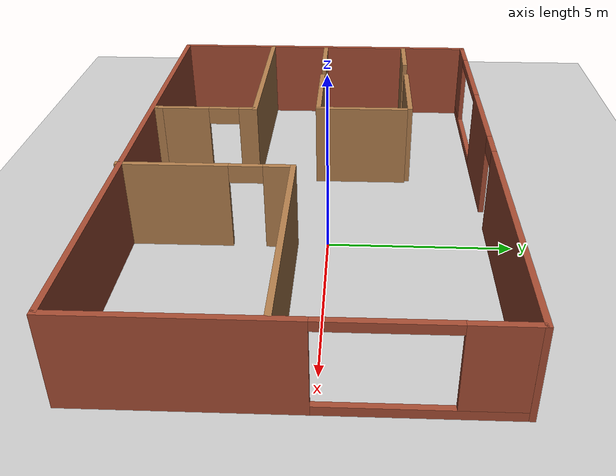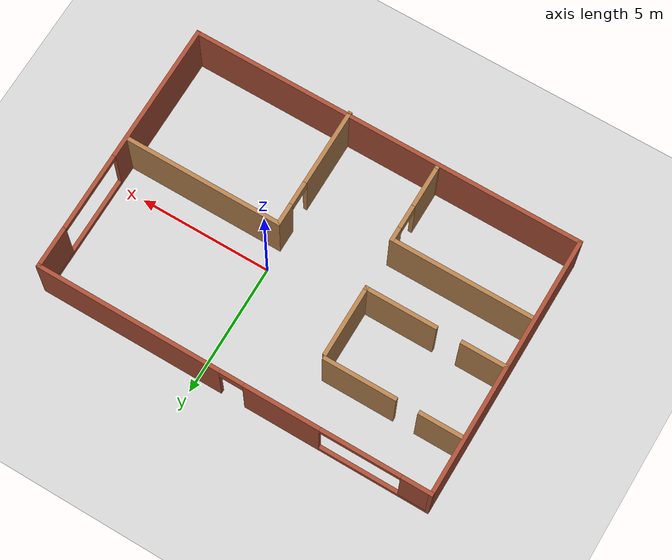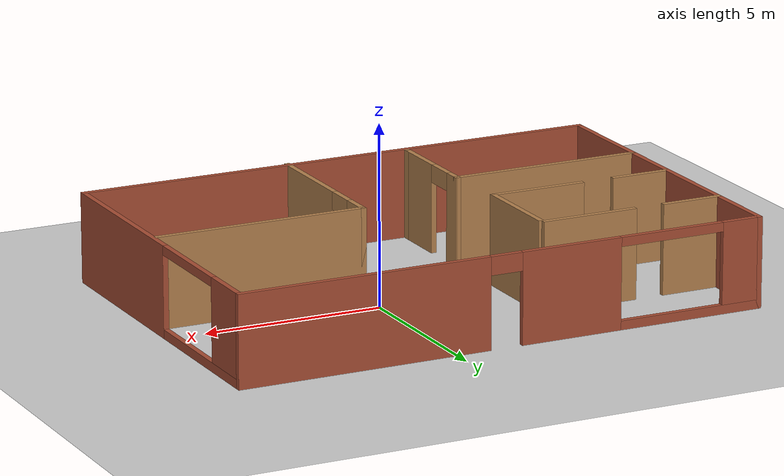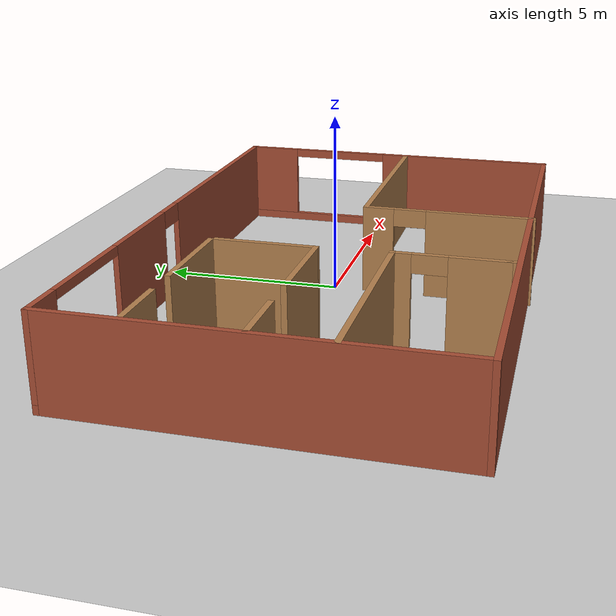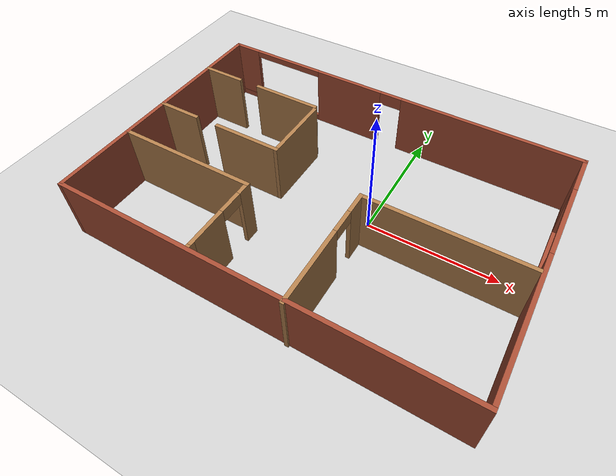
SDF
<sdf version="1.6">
 <world name="default">
  <light name="sun" type="directional">
   <pose>0 0 10 0 -0 0</pose>
   <diffuse>0.8 0.8 0.8 1</diffuse>
   <specular>0.2 0.2 0.2 1</specular>
   <attenuation>
    <range>1000</range>
    <constant>0.9</constant>
    <linear>0.01</linear>
    <quadratic>0.001</quadratic>
   </attenuation>
   <direction>-0.5 0.1 -0.9</direction>
  </light>
  <model name="ground_plane">
   <static>1</static>
   <link name="link">
    <collision name="collision">
     <geometry><plane><normal>0 0 1</normal><size>100 100</size></plane></geometry>
     <surface><friction><ode><mu>100</mu><mu2>50</mu2></ode></friction></surface>
    </collision>
    <visual name="visual">
     <cast_shadows>0</cast_shadows>
     <geometry><plane><normal>0 0 1</normal><size>100 100</size></plane></geometry>
     <material>
      <script><uri>file://media/materials/scripts/gazebo.material</uri><name>Gazebo/Grey</name></script>
     </material>
    </visual>
   </link>
  </model>
  <gravity>0 0 -9.8</gravity>
  <magnetic_field>6e-06 2.3e-05 -4.2e-05</magnetic_field>
  <atmosphere type="adiabatic"/>
  <physics name="default_physics" default="0" type="ode">
   <max_step_size>0.001</max_step_size>
   <real_time_factor>1</real_time_factor>
   <real_time_update_rate>1000</real_time_update_rate>
  </physics>
  <scene><ambient>0.4 0.4 0.4 1</ambient><background>0.7 0.7 0.7 1</background><shadows>1</shadows></scene>
  <spherical_coordinates>
   <surface_model>EARTH_WGS84</surface_model>
   <latitude_deg>0</latitude_deg>
   <longitude_deg>0</longitude_deg>
   <elevation>0</elevation>
   <heading_deg>0</heading_deg>
  </spherical_coordinates>
  <model name="building">
   <pose>-1.39777 -0.533095 0 0 -0 0</pose>
   <link name="Wall_0">
    <pose>7.42489 0.032568 0 0 -0 1.5708</pose>
    <visual name="Wall_0_Visual_0">
     <pose>-2.30676 0 1.25 0 -0 0</pose>
     <geometry><box><size>5.38649 0.15 2.5</size></box></geometry>
     <material>
      <script><uri>file://media/materials/scripts/gazebo.material</uri><name>Gazebo/Bricks</name></script>
      <ambient>0.760784 0.662745 0.627451 1</ambient>
     </material>
     <meta><layer>0</layer></meta>
    </visual>
    <collision name="Wall_0_Collision_0">
     <geometry><box><size>5.38649 0.15 2.5</size></box></geometry>
     <pose>-2.30676 0 1.25 0 -0 0</pose>
    </collision>
    <visual name="Wall_0_Visual_1">
     <pose>2.69324 0 0.125 0 -0 0</pose>
     <geometry><box><size>4.61351 0.15 0.25</size></box></geometry>
     <material>
      <script><uri>file://media/materials/scripts/gazebo.material</uri><name>Gazebo/Bricks</name></script>
      <ambient>0.760784 0.662745 0.627451 1</ambient>
     </material>
     <meta><layer>0</layer></meta>
    </visual>
    <collision name="Wall_0_Collision_1">
     <geometry><box><size>4.61351 0.15 0.25</size></box></geometry>
     <pose>2.69324 0 0.125 0 -0 0</pose>
    </collision>
    <visual name="Wall_0_Visual_2">
     <pose>4.19324 0 1.375 0 -0 0</pose>
     <geometry><box><size>1.61351 0.15 2.25</size></box></geometry>
     <material>
      <script><uri>file://media/materials/scripts/gazebo.material</uri><name>Gazebo/Bricks</name></script>
      <ambient>0.760784 0.662745 0.627451 1</ambient>
     </material>
     <meta><layer>0</layer></meta>
    </visual>
    <collision name="Wall_0_Collision_2">
     <geometry><box><size>1.61351 0.15 2.25</size></box></geometry>
     <pose>4.19324 0 1.375 0 -0 0</pose>
    </collision>
    <visual name="Wall_0_Visual_3">
     <pose>1.88649 0 2.375 0 -0 0</pose>
     <geometry><box><size>3 0.15 0.25</size></box></geometry>
     <material>
      <script><uri>file://media/materials/scripts/gazebo.material</uri><name>Gazebo/Bricks</name></script>
      <ambient>0.760784 0.662745 0.627451 1</ambient>
     </material>
     <meta><layer>0</layer></meta>
    </visual>
    <collision name="Wall_0_Collision_3">
     <geometry><box><size>3 0.15 0.25</size></box></geometry>
     <pose>1.88649 0 2.375 0 -0 0</pose>
    </collision>
   </link>
   <link name="Wall_11">
    <pose>1.44888 -2.65807 0 0 -0 1.5708</pose>
    <visual name="Wall_11_Visual_0">
     <pose>-0.883594 0 1.25 0 -0 0</pose>
     <geometry><box><size>2.98281 0.15 2.5</size></box></geometry>
     <material>
      <script><uri>file://media/materials/scripts/gazebo.material</uri><name>Gazebo/Wood</name></script>
      <ambient>1 1 1 1</ambient>
     </material>
     <meta><layer>0</layer></meta>
    </visual>
    <collision name="Wall_11_Collision_0">
     <geometry><box><size>2.98281 0.15 2.5</size></box></geometry>
     <pose>-0.883594 0 1.25 0 -0 0</pose>
    </collision>
    <visual name="Wall_11_Visual_1">
     <pose>1.94141 0 1.25 0 -0 0</pose>
     <geometry><box><size>0.867187 0.15 2.5</size></box></geometry>
     <material>
      <script><uri>file://media/materials/scripts/gazebo.material</uri><name>Gazebo/Wood</name></script>
      <ambient>1 1 1 1</ambient>
     </material>
     <meta><layer>0</layer></meta>
    </visual>
    <collision name="Wall_11_Collision_1">
     <geometry><box><size>0.867187 0.15 2.5</size></box></geometry>
     <pose>1.94141 0 1.25 0 -0 0</pose>
    </collision>
    <visual name="Wall_11_Visual_2">
     <pose>1.05781 0 2.25 0 -0 0</pose>
     <geometry><box><size>0.9 0.15 0.5</size></box></geometry>
     <material>
      <script><uri>file://media/materials/scripts/gazebo.material</uri><name>Gazebo/Wood</name></script>
      <ambient>1 1 1 1</ambient>
     </material>
     <meta><layer>0</layer></meta>
    </visual>
    <collision name="Wall_11_Collision_2">
     <geometry><box><size>0.9 0.15 0.5</size></box></geometry>
     <pose>1.05781 0 2.25 0 -0 0</pose>
    </collision>
   </link>
   <link name="Wall_12">
    <collision name="Wall_12_Collision">
     <geometry><box><size>6 0.15 2.5</size></box></geometry>
     <pose>0 0 1.25 0 -0 0</pose>
    </collision>
    <visual name="Wall_12_Visual">
     <pose>0 0 1.25 0 -0 0</pose>
     <geometry><box><size>6 0.15 2.5</size></box></geometry>
     <material>
      <script><uri>file://media/materials/scripts/gazebo.material</uri><name>Gazebo/Wood</name></script>
      <ambient>1 1 1 1</ambient>
     </material>
     <meta><layer>0</layer></meta>
    </visual>
    <pose>4.37388 -0.358065 0 0 -0 0</pose>
   </link>
   <link name="Wall_14">
    <collision name="Wall_14_Collision">
     <geometry><box><size>5.5 0.15 2.5</size></box></geometry>
     <pose>0 0 1.25 0 -0 0</pose>
    </collision>
    <visual name="Wall_14_Visual">
     <pose>0 0 1.25 0 -0 0</pose>
     <geometry><box><size>5.5 0.15 2.5</size></box></geometry>
     <material>
      <script><uri>file://media/materials/scripts/gazebo.material</uri><name>Gazebo/Wood</name></script>
      <ambient>1 1 1 1</ambient>
     </material>
     <meta><layer>0</layer></meta>
    </visual>
    <pose>-4.73589 -1.80253 0 0 -0 0</pose>
   </link>
   <link name="Wall_15">
    <pose>-2.06089 -3.22753 0 0 0 -1.5708</pose>
    <visual name="Wall_15_Visual_0">
     <pose>-1.22226 0 1.25 0 -0 0</pose>
     <geometry><box><size>0.555478 0.15 2.5</size></box></geometry>
     <material>
      <script><uri>file://media/materials/scripts/gazebo.material</uri><name>Gazebo/Wood</name></script>
      <ambient>1 1 1 1</ambient>
     </material>
     <meta><layer>0</layer></meta>
    </visual>
    <collision name="Wall_15_Collision_0">
     <geometry><box><size>0.555478 0.15 2.5</size></box></geometry>
     <pose>-1.22226 0 1.25 0 -0 0</pose>
    </collision>
    <visual name="Wall_15_Visual_1">
     <pose>0.727739 0 1.25 0 -0 0</pose>
     <geometry><box><size>1.54452 0.15 2.5</size></box></geometry>
     <material>
      <script><uri>file://media/materials/scripts/gazebo.material</uri><name>Gazebo/Wood</name></script>
      <ambient>1 1 1 1</ambient>
     </material>
     <meta><layer>0</layer></meta>
    </visual>
    <collision name="Wall_15_Collision_1">
     <geometry><box><size>1.54452 0.15 2.5</size></box></geometry>
     <pose>0.727739 0 1.25 0 -0 0</pose>
    </collision>
    <visual name="Wall_15_Visual_2">
     <pose>-0.494522 0 2.25 0 -0 0</pose>
     <geometry><box><size>0.9 0.15 0.5</size></box></geometry>
     <material>
      <script><uri>file://media/materials/scripts/gazebo.material</uri><name>Gazebo/Wood</name></script>
      <ambient>1 1 1 1</ambient>
     </material>
     <meta><layer>0</layer></meta>
    </visual>
    <collision name="Wall_15_Collision_2">
     <geometry><box><size>0.9 0.15 0.5</size></box></geometry>
     <pose>-0.494522 0 2.25 0 -0 0</pose>
    </collision>
   </link>
   <link name="Wall_16">
    <collision name="Wall_16_Collision">
     <geometry><box><size>0.25 0.15 2.5</size></box></geometry>
     <pose>0 0 1.25 0 -0 0</pose>
    </collision>
    <visual name="Wall_16_Visual">
     <pose>0 0 1.25 0 -0 0</pose>
     <geometry><box><size>0.25 0.15 2.5</size></box></geometry>
     <material>
      <script><uri>file://media/materials/scripts/gazebo.material</uri><name>Gazebo/Wood</name></script>
      <ambient>1 1 1 1</ambient>
     </material>
     <meta><layer>0</layer></meta>
    </visual>
    <pose>-2.06089 -4.70253 0 0 0 -1.5708</pose>
   </link>
   <link name="Wall_18">
    <collision name="Wall_18_Collision">
     <geometry><box><size>1.75 0.15 2.5</size></box></geometry>
     <pose>0 0 1.25 0 -0 0</pose>
    </collision>
    <visual name="Wall_18_Visual">
     <pose>0 0 1.25 0 -0 0</pose>
     <geometry><box><size>1.75 0.15 2.5</size></box></geometry>
     <material>
      <script><uri>file://media/materials/scripts/gazebo.material</uri><name>Gazebo/Wood</name></script>
      <ambient>1 1 1 1</ambient>
     </material>
     <meta><layer>0</layer></meta>
    </visual>
    <pose>-6.61089 0.098882 0 0 -0 0</pose>
   </link>
   <link name="Wall_20">
    <collision name="Wall_20_Collision">
     <geometry><box><size>1.75 0.15 2.5</size></box></geometry>
     <pose>0 0 1.25 0 -0 0</pose>
    </collision>
    <visual name="Wall_20_Visual">
     <pose>0 0 1.25 0 -0 0</pose>
     <geometry><box><size>1.75 0.15 2.5</size></box></geometry>
     <material>
      <script><uri>file://media/materials/scripts/gazebo.material</uri><name>Gazebo/Wood</name></script>
      <ambient>1 1 1 1</ambient>
     </material>
     <meta><layer>0</layer></meta>
    </visual>
    <pose>-6.61089 2.84986 0 0 -0 0</pose>
   </link>
   <link name="Wall_22">
    <collision name="Wall_22_Collision">
     <geometry><box><size>2.75 0.15 2.5</size></box></geometry>
     <pose>0 0 1.25 0 -0 0</pose>
    </collision>
    <visual name="Wall_22_Visual">
     <pose>0 0 1.25 0 -0 0</pose>
     <geometry><box><size>2.75 0.15 2.5</size></box></geometry>
     <material>
      <script><uri>file://media/materials/scripts/gazebo.material</uri><name>Gazebo/Wood</name></script>
      <ambient>1 1 1 1</ambient>
     </material>
     <meta><layer>0</layer></meta>
    </visual>
    <pose>-3.56219 2.84986 0 0 -0 0</pose>
   </link>
   <link name="Wall_30">
    <collision name="Wall_30_Collision">
     <geometry><box><size>2.75 0.15 2.5</size></box></geometry>
     <pose>0 0 1.25 0 -0 0</pose>
    </collision>
    <visual name="Wall_30_Visual">
     <pose>0 0 1.25 0 -0 0</pose>
     <geometry><box><size>2.75 0.15 2.5</size></box></geometry>
     <material>
      <script><uri>file://media/materials/scripts/gazebo.material</uri><name>Gazebo/Wood</name></script>
      <ambient>1 1 1 1</ambient>
     </material>
     <meta><layer>0</layer></meta>
    </visual>
    <pose>-3.48128 0.098882 0 0 -0 0</pose>
   </link>
   <link name="Wall_34">
    <collision name="Wall_34_Collision">
     <geometry><box><size>2.75 0.15 2.5</size></box></geometry>
     <pose>0 0 1.25 0 -0 0</pose>
    </collision>
    <visual name="Wall_34_Visual">
     <pose>0 0 1.25 0 -0 0</pose>
     <geometry><box><size>2.75 0.15 2.5</size></box></geometry>
     <material>
      <script><uri>file://media/materials/scripts/gazebo.material</uri><name>Gazebo/Wood</name></script>
      <ambient>1 1 1 1</ambient>
     </material>
     <meta><layer>0</layer></meta>
    </visual>
    <pose>-2.18128 1.39888 0 0 -0 1.5708</pose>
   </link>
   <link name="Wall_5">
    <collision name="Wall_5_Collision">
     <geometry><box><size>15 0.15 2.5</size></box></geometry>
     <pose>0 0 1.25 0 -0 0</pose>
    </collision>
    <visual name="Wall_5_Visual">
     <pose>0 0 1.25 0 -0 0</pose>
     <geometry><box><size>15 0.15 2.5</size></box></geometry>
     <material>
      <script><uri>file://media/materials/scripts/gazebo.material</uri><name>Gazebo/Bricks</name></script>
      <ambient>1 0 0 1</ambient>
     </material>
     <meta><layer>0</layer></meta>
    </visual>
    <pose>-0.000108 -4.89243 0 0 -0 3.14159</pose>
   </link>
   <link name="Wall_7">
    <pose>0.000109 4.95782 0 0 -0 3.14156</pose>
    <visual name="Wall_7_Visual_0">
     <pose>-3.97108 0 1.25 0 -0 0</pose>
     <geometry><box><size>7.05785 0.15 2.5</size></box></geometry>
     <material>
      <script><uri>file://media/materials/scripts/gazebo.material</uri><name>Gazebo/Bricks</name></script>
      <ambient>1 0 0 1</ambient>
     </material>
     <meta><layer>0</layer></meta>
    </visual>
    <collision name="Wall_7_Collision_0">
     <geometry><box><size>7.05785 0.15 2.5</size></box></geometry>
     <pose>-3.97108 0 1.25 0 -0 0</pose>
    </collision>
    <visual name="Wall_7_Visual_1">
     <pose>1.88985 0 1.25 0 -0 0</pose>
     <geometry><box><size>2.864 0.15 2.5</size></box></geometry>
     <material>
      <script><uri>file://media/materials/scripts/gazebo.material</uri><name>Gazebo/Bricks</name></script>
      <ambient>1 0 0 1</ambient>
     </material>
     <meta><layer>0</layer></meta>
    </visual>
    <collision name="Wall_7_Collision_1">
     <geometry><box><size>2.864 0.15 2.5</size></box></geometry>
     <pose>1.88985 0 1.25 0 -0 0</pose>
    </collision>
    <visual name="Wall_7_Visual_2">
     <pose>5.41092 0 0.125 0 -0 0</pose>
     <geometry><box><size>4.17815 0.15 0.25</size></box></geometry>
     <material>
      <script><uri>file://media/materials/scripts/gazebo.material</uri><name>Gazebo/Bricks</name></script>
      <ambient>1 0 0 1</ambient>
     </material>
     <meta><layer>0</layer></meta>
    </visual>
    <collision name="Wall_7_Collision_2">
     <geometry><box><size>4.17815 0.15 0.25</size></box></geometry>
     <pose>5.41092 0 0.125 0 -0 0</pose>
    </collision>
    <visual name="Wall_7_Visual_3">
     <pose>6.91092 0 1.375 0 -0 0</pose>
     <geometry><box><size>1.17815 0.15 2.25</size></box></geometry>
     <material>
      <script><uri>file://media/materials/scripts/gazebo.material</uri><name>Gazebo/Bricks</name></script>
      <ambient>1 0 0 1</ambient>
     </material>
     <meta><layer>0</layer></meta>
    </visual>
    <collision name="Wall_7_Collision_3">
     <geometry><box><size>1.17815 0.15 2.25</size></box></geometry>
     <pose>6.91092 0 1.375 0 -0 0</pose>
    </collision>
    <visual name="Wall_7_Visual_4">
     <pose>0.007847 0 2.25 0 -0 0</pose>
     <geometry><box><size>0.9 0.15 0.5</size></box></geometry>
     <material>
      <script><uri>file://media/materials/scripts/gazebo.material</uri><name>Gazebo/Bricks</name></script>
      <ambient>1 0 0 1</ambient>
     </material>
     <meta><layer>0</layer></meta>
    </visual>
    <collision name="Wall_7_Collision_4">
     <geometry><box><size>0.9 0.15 0.5</size></box></geometry>
     <pose>0.007847 0 2.25 0 -0 0</pose>
    </collision>
    <visual name="Wall_7_Visual_5">
     <pose>4.82185 0 2.375 0 -0 0</pose>
     <geometry><box><size>3 0.15 0.25</size></box></geometry>
     <material>
      <script><uri>file://media/materials/scripts/gazebo.material</uri><name>Gazebo/Bricks</name></script>
      <ambient>1 0 0 1</ambient>
     </material>
     <meta><layer>0</layer></meta>
    </visual>
    <collision name="Wall_7_Collision_5">
     <geometry><box><size>3 0.15 0.25</size></box></geometry>
     <pose>4.82185 0 2.375 0 -0 0</pose>
    </collision>
   </link>
   <link name="Wall_9">
    <collision name="Wall_9_Collision">
     <geometry><box><size>10.0005 0.15 2.5</size></box></geometry>
     <pose>0 0 1.25 0 -0 0</pose>
    </collision>
    <visual name="Wall_9_Visual">
     <pose>0 0 1.25 0 -0 0</pose>
     <geometry><box><size>10.0005 0.15 2.5</size></box></geometry>
     <material>
      <script><uri>file://media/materials/scripts/gazebo.material</uri><name>Gazebo/Bricks</name></script>
      <ambient>1 0 0 1</ambient>
     </material>
     <meta><layer>0</layer></meta>
    </visual>
    <pose>-7.42489 0.032815 0 0 0 -1.57084</pose>
   </link>
   <static>1</static>
  </model>
 </world>
</sdf>
